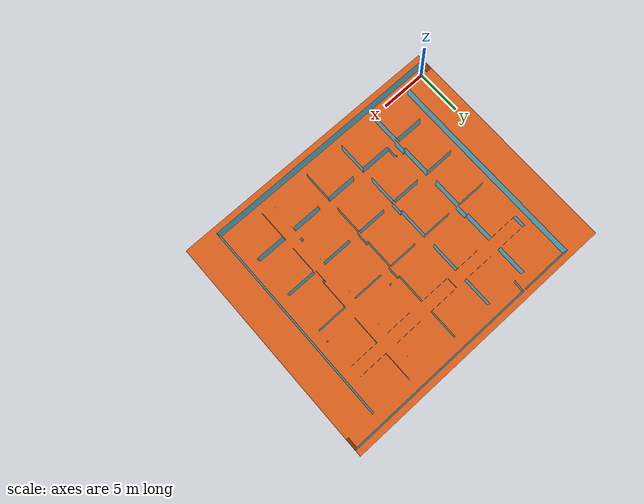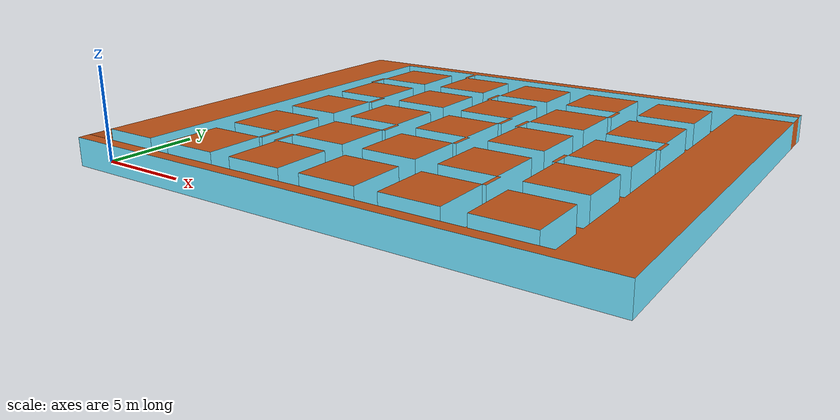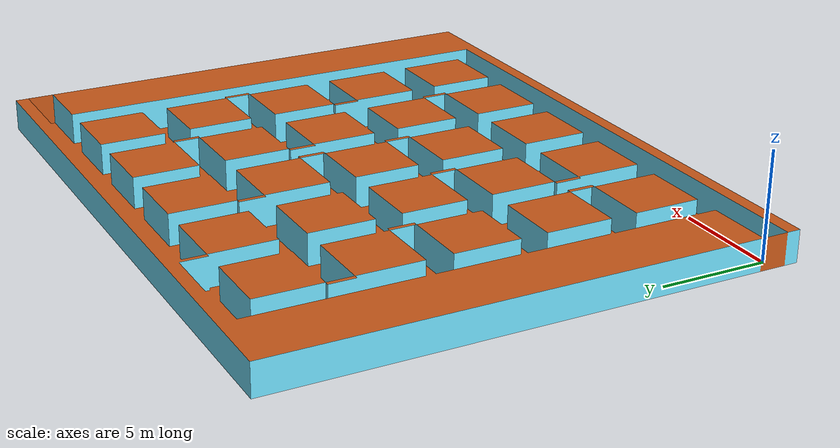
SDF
<sdf version='1.5'>
  <!-- Draw Model -->
  <model name="mazev8">
    <static>true</static>
    <link name="mazev8">
      <collision name="collision">
        <geometry>
          <mesh>
            <uri>model://turtlebot3_maze2/mazev8/mazev8.stl</uri>
          </mesh>
        </geometry>
      </collision>

      <visual name="visual">
        <geometry>
          <mesh>
            <uri>model://turtlebot3_maze2/mazev8/mazev8.dae</uri>
          </mesh>
        </geometry>
      </visual>
    </link>
  </model>
</sdf>
